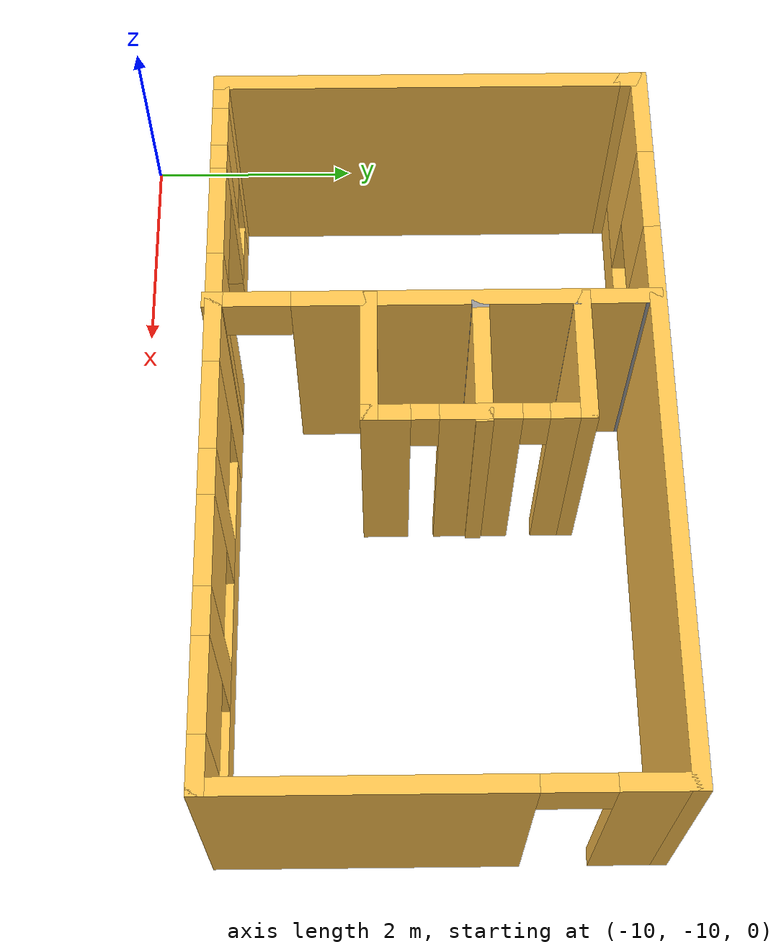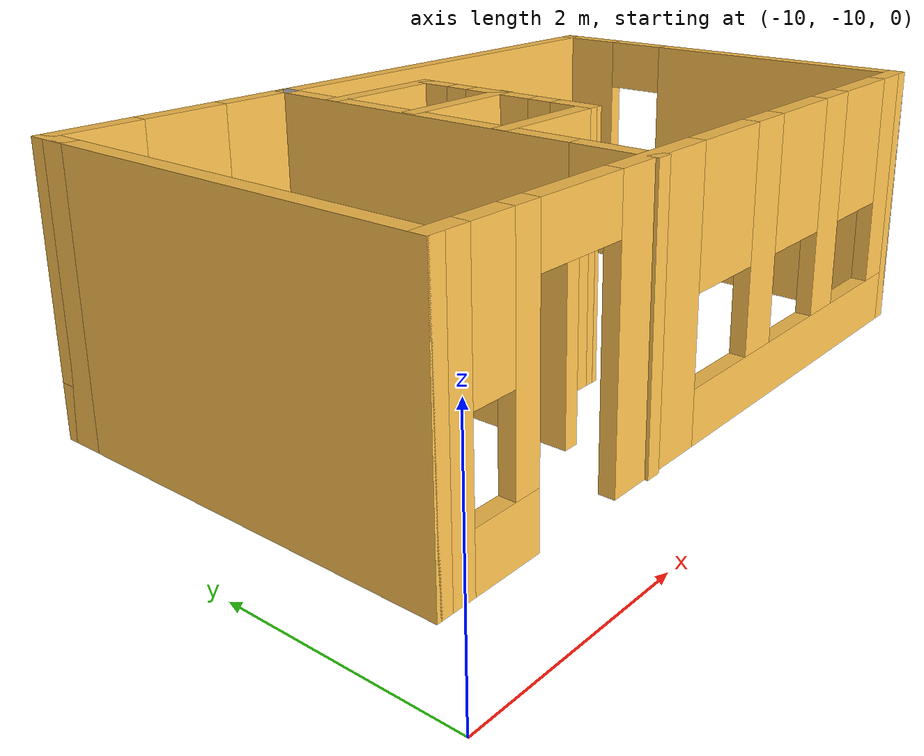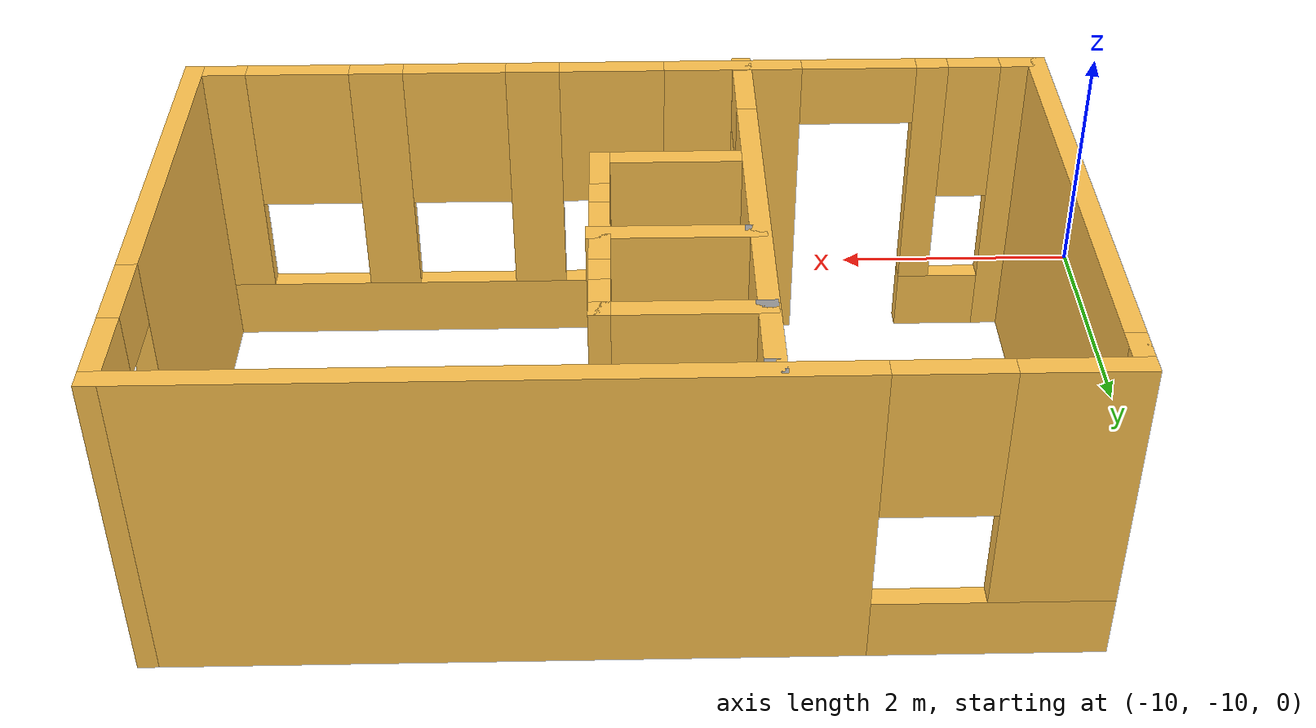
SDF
<?xml version='1.0'?>
<sdf version='1.6'>
  <model name='mybuilding'>
    <pose frame=''>-5.99 -7.21 0 0 -0 0</pose>
    <link name='Wall_22'>
      <collision name='Wall_22_Collision'>
        <geometry>
          <box>
            <size>3.75 0.15 2.5</size>
          </box>
        </geometry>
        <pose frame=''>0 0 1.25 0 -0 0</pose>
      </collision>
      <visual name='Wall_22_Visual'>
        <pose frame=''>0 0 1.25 0 -0 0</pose>
        <geometry>
          <box>
            <size>3.75 0.15 2.5</size>
          </box>
        </geometry>
        <material>
          <script>
            <uri>file://media/materials/scripts/gazebo.material</uri>
            <name>Gazebo/Grey</name>
          </script>
          <ambient>1 0.764706 0.305882 1</ambient>
        </material>
      </visual>
      <pose frame=''>-3.3 -0.11 0 0 0 -1.5708</pose>
    </link>
    <link name='Wall_23'>
      <pose frame=''>0 -1.91 0 0 -0 0</pose>
      <visual name='Wall_23_Visual_0'>
        <pose frame=''>-3.1925 0 1.25 0 -0 0</pose>
        <geometry>
          <box>
            <size>0.365 0.15 2.5</size>
          </box>
        </geometry>
        <material>
          <script>
            <uri>file://media/materials/scripts/gazebo.material</uri>
            <name>Gazebo/Grey</name>
          </script>
          <ambient>1 0.764706 0.305882 1</ambient>
        </material>
      </visual>
      <collision name='Wall_23_Collision_0'>
        <geometry>
          <box>
            <size>0.365 0.15 2.5</size>
          </box>
        </geometry>
        <pose frame=''>-3.1925 0 1.25 0 -0 0</pose>
      </collision>
      <visual name='Wall_23_Visual_1'>
        <pose frame=''>-0.91 0 1.25 0 -0 0</pose>
        <geometry>
          <box>
            <size>1.08 0.15 2.5</size>
          </box>
        </geometry>
        <material>
          <script>
            <uri>file://media/materials/scripts/gazebo.material</uri>
            <name>Gazebo/Grey</name>
          </script>
          <ambient>1 0.764706 0.305882 1</ambient>
        </material>
      </visual>
      <collision name='Wall_23_Collision_1'>
        <geometry>
          <box>
            <size>1.08 0.15 2.5</size>
          </box>
        </geometry>
        <pose frame=''>-0.91 0 1.25 0 -0 0</pose>
      </collision>
      <visual name='Wall_23_Visual_2'>
        <pose frame=''>-2.68 0 0.25 0 -0 0</pose>
        <geometry>
          <box>
            <size>0.66 0.15 0.5</size>
          </box>
        </geometry>
        <material>
          <script>
            <uri>file://media/materials/scripts/gazebo.material</uri>
            <name>Gazebo/Grey</name>
          </script>
          <ambient>1 0.764706 0.305882 1</ambient>
        </material>
      </visual>
      <collision name='Wall_23_Collision_2'>
        <geometry>
          <box>
            <size>0.66 0.15 0.5</size>
          </box>
        </geometry>
        <pose frame=''>-2.68 0 0.25 0 -0 0</pose>
      </collision>
      <visual name='Wall_23_Visual_3'>
        <pose frame=''>1.5025 0 0.25 0 -0 0</pose>
        <geometry>
          <box>
            <size>3.745 0.15 0.5</size>
          </box>
        </geometry>
        <material>
          <script>
            <uri>file://media/materials/scripts/gazebo.material</uri>
            <name>Gazebo/Grey</name>
          </script>
          <ambient>1 0.764706 0.305882 1</ambient>
        </material>
      </visual>
      <collision name='Wall_23_Collision_3'>
        <geometry>
          <box>
            <size>3.745 0.15 0.5</size>
          </box>
        </geometry>
        <pose frame=''>1.5025 0 0.25 0 -0 0</pose>
      </collision>
      <visual name='Wall_23_Visual_4'>
        <pose frame=''>-2.475 0 1.5 0 -0 0</pose>
        <geometry>
          <box>
            <size>0.25 0.15 2</size>
          </box>
        </geometry>
        <material>
          <script>
            <uri>file://media/materials/scripts/gazebo.material</uri>
            <name>Gazebo/Grey</name>
          </script>
          <ambient>1 0.764706 0.305882 1</ambient>
        </material>
      </visual>
      <collision name='Wall_23_Collision_4'>
        <geometry>
          <box>
            <size>0.25 0.15 2</size>
          </box>
        </geometry>
        <pose frame=''>-2.475 0 1.5 0 -0 0</pose>
      </collision>
      <visual name='Wall_23_Visual_5'>
        <pose frame=''>-2.475 0 1.5 0 -0 0</pose>
        <geometry>
          <box>
            <size>0.25 0.15 2</size>
          </box>
        </geometry>
        <material>
          <script>
            <uri>file://media/materials/scripts/gazebo.material</uri>
            <name>Gazebo/Grey</name>
          </script>
          <ambient>1 0.764706 0.305882 1</ambient>
        </material>
      </visual>
      <collision name='Wall_23_Collision_5'>
        <geometry>
          <box>
            <size>0.25 0.15 2</size>
          </box>
        </geometry>
        <pose frame=''>-2.475 0 1.5 0 -0 0</pose>
      </collision>
      <visual name='Wall_23_Visual_6'>
        <pose frame=''>0.66 0 1.5 0 -0 0</pose>
        <geometry>
          <box>
            <size>0.42 0.15 2</size>
          </box>
        </geometry>
        <material>
          <script>
            <uri>file://media/materials/scripts/gazebo.material</uri>
            <name>Gazebo/Grey</name>
          </script>
          <ambient>1 0.764706 0.305882 1</ambient>
        </material>
      </visual>
      <collision name='Wall_23_Collision_6'>
        <geometry>
          <box>
            <size>0.42 0.15 2</size>
          </box>
        </geometry>
        <pose frame=''>0.66 0 1.5 0 -0 0</pose>
      </collision>
      <visual name='Wall_23_Visual_7'>
        <pose frame=''>1.88 0 1.5 0 -0 0</pose>
        <geometry>
          <box>
            <size>0.42 0.15 2</size>
          </box>
        </geometry>
        <material>
          <script>
            <uri>file://media/materials/scripts/gazebo.material</uri>
            <name>Gazebo/Grey</name>
          </script>
          <ambient>1 0.764706 0.305882 1</ambient>
        </material>
      </visual>
      <collision name='Wall_23_Collision_7'>
        <geometry>
          <box>
            <size>0.42 0.15 2</size>
          </box>
        </geometry>
        <pose frame=''>1.88 0 1.5 0 -0 0</pose>
      </collision>
      <visual name='Wall_23_Visual_8'>
        <pose frame=''>3.1325 0 1.5 0 -0 0</pose>
        <geometry>
          <box>
            <size>0.485 0.15 2</size>
          </box>
        </geometry>
        <material>
          <script>
            <uri>file://media/materials/scripts/gazebo.material</uri>
            <name>Gazebo/Grey</name>
          </script>
          <ambient>1 0.764706 0.305882 1</ambient>
        </material>
      </visual>
      <collision name='Wall_23_Collision_8'>
        <geometry>
          <box>
            <size>0.485 0.15 2</size>
          </box>
        </geometry>
        <pose frame=''>3.1325 0 1.5 0 -0 0</pose>
      </collision>
      <visual name='Wall_23_Visual_9'>
        <pose frame=''>-2.805 0 1.9 0 -0 0</pose>
        <geometry>
          <box>
            <size>0.41 0.15 1.2</size>
          </box>
        </geometry>
        <material>
          <script>
            <uri>file://media/materials/scripts/gazebo.material</uri>
            <name>Gazebo/Grey</name>
          </script>
          <ambient>1 0.764706 0.305882 1</ambient>
        </material>
      </visual>
      <collision name='Wall_23_Collision_9'>
        <geometry>
          <box>
            <size>0.41 0.15 1.2</size>
          </box>
        </geometry>
        <pose frame=''>-2.805 0 1.9 0 -0 0</pose>
      </collision>
      <visual name='Wall_23_Visual_10'>
        <pose frame=''>0.04 0 1.9 0 -0 0</pose>
        <geometry>
          <box>
            <size>0.82 0.15 1.2</size>
          </box>
        </geometry>
        <material>
          <script>
            <uri>file://media/materials/scripts/gazebo.material</uri>
            <name>Gazebo/Grey</name>
          </script>
          <ambient>1 0.764706 0.305882 1</ambient>
        </material>
      </visual>
      <collision name='Wall_23_Collision_10'>
        <geometry>
          <box>
            <size>0.82 0.15 1.2</size>
          </box>
        </geometry>
        <pose frame=''>0.04 0 1.9 0 -0 0</pose>
      </collision>
      <visual name='Wall_23_Visual_11'>
        <pose frame=''>1.27 0 1.9 0 -0 0</pose>
        <geometry>
          <box>
            <size>0.8 0.15 1.2</size>
          </box>
        </geometry>
        <material>
          <script>
            <uri>file://media/materials/scripts/gazebo.material</uri>
            <name>Gazebo/Grey</name>
          </script>
          <ambient>1 0.764706 0.305882 1</ambient>
        </material>
      </visual>
      <collision name='Wall_23_Collision_11'>
        <geometry>
          <box>
            <size>0.8 0.15 1.2</size>
          </box>
        </geometry>
        <pose frame=''>1.27 0 1.9 0 -0 0</pose>
      </collision>
      <visual name='Wall_23_Visual_12'>
        <pose frame=''>2.49 0 1.9 0 -0 0</pose>
        <geometry>
          <box>
            <size>0.8 0.15 1.2</size>
          </box>
        </geometry>
        <material>
          <script>
            <uri>file://media/materials/scripts/gazebo.material</uri>
            <name>Gazebo/Grey</name>
          </script>
          <ambient>1 0.764706 0.305882 1</ambient>
        </material>
      </visual>
      <collision name='Wall_23_Collision_12'>
        <geometry>
          <box>
            <size>0.8 0.15 1.2</size>
          </box>
        </geometry>
        <pose frame=''>2.49 0 1.9 0 -0 0</pose>
      </collision>
      <visual name='Wall_23_Visual_13'>
        <pose frame=''>-1.9 0 2.25 0 -0 0</pose>
        <geometry>
          <box>
            <size>0.9 0.15 0.5</size>
          </box>
        </geometry>
        <material>
          <script>
            <uri>file://media/materials/scripts/gazebo.material</uri>
            <name>Gazebo/Grey</name>
          </script>
          <ambient>1 0.764706 0.305882 1</ambient>
        </material>
      </visual>
      <collision name='Wall_23_Collision_13'>
        <geometry>
          <box>
            <size>0.9 0.15 0.5</size>
          </box>
        </geometry>
        <pose frame=''>-1.9 0 2.25 0 -0 0</pose>
      </collision>
      <visual name='Wall_23_Visual_14'>
        <pose frame=''>-1.9 0 2.25 0 -0 0</pose>
        <geometry>
          <box>
            <size>0.9 0.15 0.5</size>
          </box>
        </geometry>
        <material>
          <script>
            <uri>file://media/materials/scripts/gazebo.material</uri>
            <name>Gazebo/Grey</name>
          </script>
          <ambient>1 0.764706 0.305882 1</ambient>
        </material>
      </visual>
      <collision name='Wall_23_Collision_14'>
        <geometry>
          <box>
            <size>0.9 0.15 0.5</size>
          </box>
        </geometry>
        <pose frame=''>-1.9 0 2.25 0 -0 0</pose>
      </collision>
    </link>
    <link name='Wall_24'>
      <pose frame=''>3.3 0.015 0 0 -0 1.5708</pose>
      <visual name='Wall_24_Visual_0'>
        <pose frame=''>-0.6525 0 1.25 0 -0 0</pose>
        <geometry>
          <box>
            <size>2.695 0.15 2.5</size>
          </box>
        </geometry>
        <material>
          <script>
            <uri>file://media/materials/scripts/gazebo.material</uri>
            <name>Gazebo/Grey</name>
          </script>
          <ambient>1 0.764706 0.305882 1</ambient>
        </material>
      </visual>
      <collision name='Wall_24_Collision_0'>
        <geometry>
          <box>
            <size>2.695 0.15 2.5</size>
          </box>
        </geometry>
        <pose frame=''>-0.6525 0 1.25 0 -0 0</pose>
      </collision>
      <visual name='Wall_24_Visual_1'>
        <pose frame=''>1.6475 0 1.25 0 -0 0</pose>
        <geometry>
          <box>
            <size>0.705 0.15 2.5</size>
          </box>
        </geometry>
        <material>
          <script>
            <uri>file://media/materials/scripts/gazebo.material</uri>
            <name>Gazebo/Grey</name>
          </script>
          <ambient>1 0.764706 0.305882 1</ambient>
        </material>
      </visual>
      <collision name='Wall_24_Collision_1'>
        <geometry>
          <box>
            <size>0.705 0.15 2.5</size>
          </box>
        </geometry>
        <pose frame=''>1.6475 0 1.25 0 -0 0</pose>
      </collision>
      <visual name='Wall_24_Visual_2'>
        <pose frame=''>0.995 0 2.25 0 -0 0</pose>
        <geometry>
          <box>
            <size>0.6 0.15 0.5</size>
          </box>
        </geometry>
        <material>
          <script>
            <uri>file://media/materials/scripts/gazebo.material</uri>
            <name>Gazebo/Grey</name>
          </script>
          <ambient>1 0.764706 0.305882 1</ambient>
        </material>
      </visual>
      <collision name='Wall_24_Collision_2'>
        <geometry>
          <box>
            <size>0.6 0.15 0.5</size>
          </box>
        </geometry>
        <pose frame=''>0.995 0 2.25 0 -0 0</pose>
      </collision>
    </link>
    <link name='Wall_25'>
      <pose frame=''>0 1.94 0 0 -0 3.14159</pose>
      <visual name='Wall_25_Visual_0'>
        <pose frame=''>-0.8425 0 1.25 0 -0 0</pose>
        <geometry>
          <box>
            <size>5.065 0.15 2.5</size>
          </box>
        </geometry>
        <material>
          <script>
            <uri>file://media/materials/scripts/gazebo.material</uri>
            <name>Gazebo/Grey</name>
          </script>
          <ambient>1 0.764706 0.305882 1</ambient>
        </material>
      </visual>
      <collision name='Wall_25_Collision_0'>
        <geometry>
          <box>
            <size>5.065 0.15 2.5</size>
          </box>
        </geometry>
        <pose frame=''>-0.8425 0 1.25 0 -0 0</pose>
      </collision>
      <visual name='Wall_25_Visual_1'>
        <pose frame=''>2.5325 0 0.25 0 -0 0</pose>
        <geometry>
          <box>
            <size>1.685 0.15 0.5</size>
          </box>
        </geometry>
        <material>
          <script>
            <uri>file://media/materials/scripts/gazebo.material</uri>
            <name>Gazebo/Grey</name>
          </script>
          <ambient>1 0.764706 0.305882 1</ambient>
        </material>
      </visual>
      <collision name='Wall_25_Collision_1'>
        <geometry>
          <box>
            <size>1.685 0.15 0.5</size>
          </box>
        </geometry>
        <pose frame=''>2.5325 0 0.25 0 -0 0</pose>
      </collision>
      <visual name='Wall_25_Visual_2'>
        <pose frame=''>2.9325 0 1.5 0 -0 0</pose>
        <geometry>
          <box>
            <size>0.885 0.15 2</size>
          </box>
        </geometry>
        <material>
          <script>
            <uri>file://media/materials/scripts/gazebo.material</uri>
            <name>Gazebo/Grey</name>
          </script>
          <ambient>1 0.764706 0.305882 1</ambient>
        </material>
      </visual>
      <collision name='Wall_25_Collision_2'>
        <geometry>
          <box>
            <size>0.885 0.15 2</size>
          </box>
        </geometry>
        <pose frame=''>2.9325 0 1.5 0 -0 0</pose>
      </collision>
      <visual name='Wall_25_Visual_3'>
        <pose frame=''>2.09 0 1.9 0 -0 0</pose>
        <geometry>
          <box>
            <size>0.8 0.15 1.2</size>
          </box>
        </geometry>
        <material>
          <script>
            <uri>file://media/materials/scripts/gazebo.material</uri>
            <name>Gazebo/Grey</name>
          </script>
          <ambient>1 0.764706 0.305882 1</ambient>
        </material>
      </visual>
      <collision name='Wall_25_Collision_3'>
        <geometry>
          <box>
            <size>0.8 0.15 1.2</size>
          </box>
        </geometry>
        <pose frame=''>2.09 0 1.9 0 -0 0</pose>
      </collision>
    </link>
    <link name='Wall_26'>
      <collision name='Wall_26_Collision'>
        <geometry>
          <box>
            <size>0.4 0.15 2.5</size>
          </box>
        </geometry>
        <pose frame=''>0 0 1.25 0 -0 0</pose>
      </collision>
      <visual name='Wall_26_Visual'>
        <pose frame=''>0 0 1.25 0 -0 0</pose>
        <geometry>
          <box>
            <size>0.4 0.15 2.5</size>
          </box>
        </geometry>
        <material>
          <script>
            <uri>file://media/materials/scripts/gazebo.material</uri>
            <name>Gazebo/Grey</name>
          </script>
          <ambient>1 0.764706 0.305882 1</ambient>
        </material>
      </visual>
      <pose frame=''>-3.3 1.815 0 0 0 -1.5708</pose>
    </link>
    <link name='Wall_32'>
      <pose frame=''>-0.98 -0.015 0 0 -0 1.5708</pose>
      <visual name='Wall_32_Visual_0'>
        <pose frame=''>-1.9075 0 1.25 0 -0 0</pose>
        <geometry>
          <box>
            <size>0.185 0.15 2.5</size>
          </box>
        </geometry>
        <material>
          <script>
            <uri>file://media/materials/scripts/gazebo.material</uri>
            <name>Gazebo/Grey</name>
          </script>
          <ambient>1 0.764706 0.305882 1</ambient>
        </material>
      </visual>
      <collision name='Wall_32_Collision_0'>
        <geometry>
          <box>
            <size>0.185 0.15 2.5</size>
          </box>
        </geometry>
        <pose frame=''>-1.9075 0 1.25 0 -0 0</pose>
      </collision>
      <visual name='Wall_32_Visual_1'>
        <pose frame=''>0.3875 0 1.25 0 -0 0</pose>
        <geometry>
          <box>
            <size>3.225 0.15 2.5</size>
          </box>
        </geometry>
        <material>
          <script>
            <uri>file://media/materials/scripts/gazebo.material</uri>
            <name>Gazebo/Grey</name>
          </script>
          <ambient>1 0.764706 0.305882 1</ambient>
        </material>
      </visual>
      <collision name='Wall_32_Collision_1'>
        <geometry>
          <box>
            <size>3.225 0.15 2.5</size>
          </box>
        </geometry>
        <pose frame=''>0.3875 0 1.25 0 -0 0</pose>
      </collision>
      <visual name='Wall_32_Visual_2'>
        <pose frame=''>-1.52 0 2.25 0 -0 0</pose>
        <geometry>
          <box>
            <size>0.59 0.15 0.5</size>
          </box>
        </geometry>
        <material>
          <script>
            <uri>file://media/materials/scripts/gazebo.material</uri>
            <name>Gazebo/Grey</name>
          </script>
          <ambient>1 0.764706 0.305882 1</ambient>
        </material>
      </visual>
      <collision name='Wall_32_Collision_2'>
        <geometry>
          <box>
            <size>0.59 0.15 0.5</size>
          </box>
        </geometry>
        <pose frame=''>-1.52 0 2.25 0 -0 0</pose>
      </collision>
    </link>
    <link name='Wall_33'>
      <collision name='Wall_33_Collision'>
        <geometry>
          <box>
            <size>0.15 0.15 2.5</size>
          </box>
        </geometry>
        <pose frame=''>0 0 1.25 0 -0 0</pose>
      </collision>
      <visual name='Wall_33_Visual'>
        <pose frame=''>0 0 1.25 0 -0 0</pose>
        <geometry>
          <box>
            <size>0.15 0.15 2.5</size>
          </box>
        </geometry>
        <material>
          <script>
            <uri>file://media/materials/scripts/gazebo.material</uri>
            <name>Gazebo/Grey</name>
          </script>
          <ambient>1 1 1 1</ambient>
        </material>
      </visual>
      <pose frame=''>-0.98 1.91 0 0 -0 0</pose>
    </link>
    <link name='Wall_35'>
      <collision name='Wall_35_Collision'>
        <geometry>
          <box>
            <size>1.25 0.15 2.5</size>
          </box>
        </geometry>
        <pose frame=''>0 0 1.25 0 -0 0</pose>
      </collision>
      <visual name='Wall_35_Visual'>
        <pose frame=''>0 0 1.25 0 -0 0</pose>
        <geometry>
          <box>
            <size>1.25 0.15 2.5</size>
          </box>
        </geometry>
        <material>
          <script>
            <uri>file://media/materials/scripts/gazebo.material</uri>
            <name>Gazebo/Grey</name>
          </script>
          <ambient>1 0.764706 0.305882 1</ambient>
        </material>
      </visual>
      <pose frame=''>-0.42 -0.57 0 0 -0 0</pose>
    </link>
    <link name='Wall_36'>
      <pose frame=''>0.13 0.355 0 0 -0 1.5708</pose>
      <visual name='Wall_36_Visual_0'>
        <pose frame=''>-0.7875 0 1.25 0 -0 0</pose>
        <geometry>
          <box>
            <size>0.425 0.15 2.5</size>
          </box>
        </geometry>
        <material>
          <script>
            <uri>file://media/materials/scripts/gazebo.material</uri>
            <name>Gazebo/Grey</name>
          </script>
          <ambient>1 0.764706 0.305882 1</ambient>
        </material>
      </visual>
      <collision name='Wall_36_Collision_0'>
        <geometry>
          <box>
            <size>0.425 0.15 2.5</size>
          </box>
        </geometry>
        <pose frame=''>-0.7875 0 1.25 0 -0 0</pose>
      </collision>
      <visual name='Wall_36_Visual_1'>
        <pose frame=''>0.015 0 1.25 0 -0 0</pose>
        <geometry>
          <box>
            <size>0.7 0.15 2.5</size>
          </box>
        </geometry>
        <material>
          <script>
            <uri>file://media/materials/scripts/gazebo.material</uri>
            <name>Gazebo/Grey</name>
          </script>
          <ambient>1 0.764706 0.305882 1</ambient>
        </material>
      </visual>
      <collision name='Wall_36_Collision_1'>
        <geometry>
          <box>
            <size>0.7 0.15 2.5</size>
          </box>
        </geometry>
        <pose frame=''>0.015 0 1.25 0 -0 0</pose>
      </collision>
      <visual name='Wall_36_Visual_2'>
        <pose frame=''>0.7975 0 1.25 0 -0 0</pose>
        <geometry>
          <box>
            <size>0.405 0.15 2.5</size>
          </box>
        </geometry>
        <material>
          <script>
            <uri>file://media/materials/scripts/gazebo.material</uri>
            <name>Gazebo/Grey</name>
          </script>
          <ambient>1 0.764706 0.305882 1</ambient>
        </material>
      </visual>
      <collision name='Wall_36_Collision_2'>
        <geometry>
          <box>
            <size>0.405 0.15 2.5</size>
          </box>
        </geometry>
        <pose frame=''>0.7975 0 1.25 0 -0 0</pose>
      </collision>
      <visual name='Wall_36_Visual_3'>
        <pose frame=''>-0.455 0 2.25 0 -0 0</pose>
        <geometry>
          <box>
            <size>0.24 0.15 0.5</size>
          </box>
        </geometry>
        <material>
          <script>
            <uri>file://media/materials/scripts/gazebo.material</uri>
            <name>Gazebo/Grey</name>
          </script>
          <ambient>1 0.764706 0.305882 1</ambient>
        </material>
      </visual>
      <collision name='Wall_36_Collision_3'>
        <geometry>
          <box>
            <size>0.24 0.15 0.5</size>
          </box>
        </geometry>
        <pose frame=''>-0.455 0 2.25 0 -0 0</pose>
      </collision>
      <visual name='Wall_36_Visual_4'>
        <pose frame=''>0.48 0 2.25 0 -0 0</pose>
        <geometry>
          <box>
            <size>0.23 0.15 0.5</size>
          </box>
        </geometry>
        <material>
          <script>
            <uri>file://media/materials/scripts/gazebo.material</uri>
            <name>Gazebo/Grey</name>
          </script>
          <ambient>1 0.764706 0.305882 1</ambient>
        </material>
      </visual>
      <collision name='Wall_36_Collision_4'>
        <geometry>
          <box>
            <size>0.23 0.15 0.5</size>
          </box>
        </geometry>
        <pose frame=''>0.48 0 2.25 0 -0 0</pose>
      </collision>
    </link>
    <link name='Wall_37'>
      <collision name='Wall_37_Collision'>
        <geometry>
          <box>
            <size>1.25 0.15 2.5</size>
          </box>
        </geometry>
        <pose frame=''>0 0 1.25 0 -0 0</pose>
      </collision>
      <visual name='Wall_37_Visual'>
        <pose frame=''>0 0 1.25 0 -0 0</pose>
        <geometry>
          <box>
            <size>1.25 0.15 2.5</size>
          </box>
        </geometry>
        <material>
          <script>
            <uri>file://media/materials/scripts/gazebo.material</uri>
            <name>Gazebo/Grey</name>
          </script>
          <ambient>1 0.764706 0.305882 1</ambient>
        </material>
      </visual>
      <pose frame=''>-0.42 1.28 0 0 -0 3.14159</pose>
    </link>
    <link name='Wall_38'>
      <collision name='Wall_38_Collision'>
        <geometry>
          <box>
            <size>0.15 0.15 2.5</size>
          </box>
        </geometry>
        <pose frame=''>0 0 1.25 0 -0 0</pose>
      </collision>
      <visual name='Wall_38_Visual'>
        <pose frame=''>0 0 1.25 0 -0 0</pose>
        <geometry>
          <box>
            <size>0.15 0.15 2.5</size>
          </box>
        </geometry>
        <material>
          <script>
            <uri>file://media/materials/scripts/gazebo.material</uri>
            <name>Gazebo/Grey</name>
          </script>
          <ambient>1 1 1 1</ambient>
        </material>
      </visual>
      <pose frame=''>-0.97 1.28 0 0 -0 0</pose>
    </link>
    <link name='Wall_40'>
      <collision name='Wall_40_Collision'>
        <geometry>
          <box>
            <size>1.25 0.15 2.5</size>
          </box>
        </geometry>
        <pose frame=''>0 0 1.25 0 -0 0</pose>
      </collision>
      <visual name='Wall_40_Visual'>
        <pose frame=''>0 0 1.25 0 -0 0</pose>
        <geometry>
          <box>
            <size>1.25 0.15 2.5</size>
          </box>
        </geometry>
        <material>
          <script>
            <uri>file://media/materials/scripts/gazebo.material</uri>
            <name>Gazebo/Grey</name>
          </script>
          <ambient>1 0.764706 0.305882 1</ambient>
        </material>
      </visual>
      <pose frame=''>-0.4 0.4 0 0 -0 3.14159</pose>
    </link>
    <link name='Wall_41'>
      <collision name='Wall_41_Collision'>
        <geometry>
          <box>
            <size>0.15 0.15 2.5</size>
          </box>
        </geometry>
        <pose frame=''>0 0 1.25 0 -0 0</pose>
      </collision>
      <visual name='Wall_41_Visual'>
        <pose frame=''>0 0 1.25 0 -0 0</pose>
        <geometry>
          <box>
            <size>0.15 0.15 2.5</size>
          </box>
        </geometry>
        <material>
          <script>
            <uri>file://media/materials/scripts/gazebo.material</uri>
            <name>Gazebo/Grey</name>
          </script>
          <ambient>1 1 1 1</ambient>
        </material>
      </visual>
      <pose frame=''>-0.95 0.4 0 0 -0 0</pose>
    </link>
    <static>1</static>
  </model>
</sdf>
